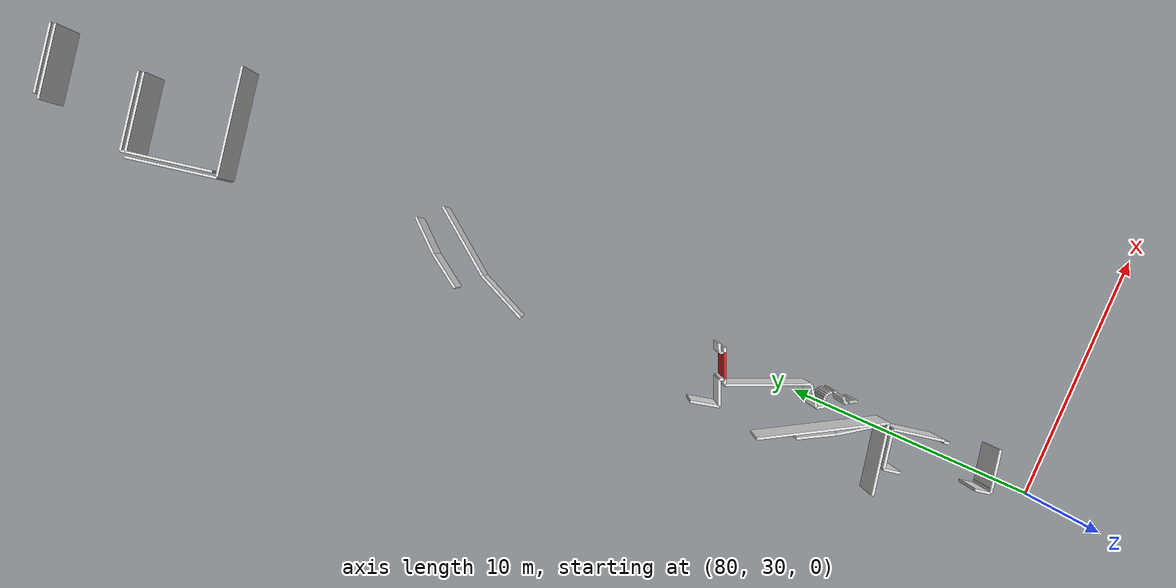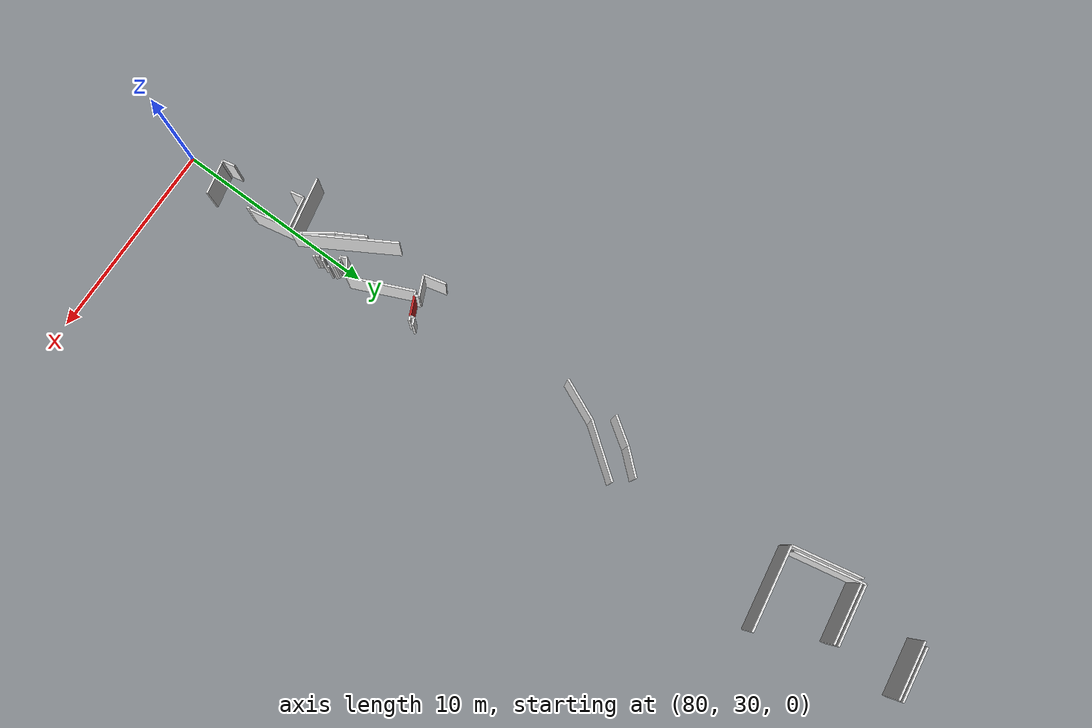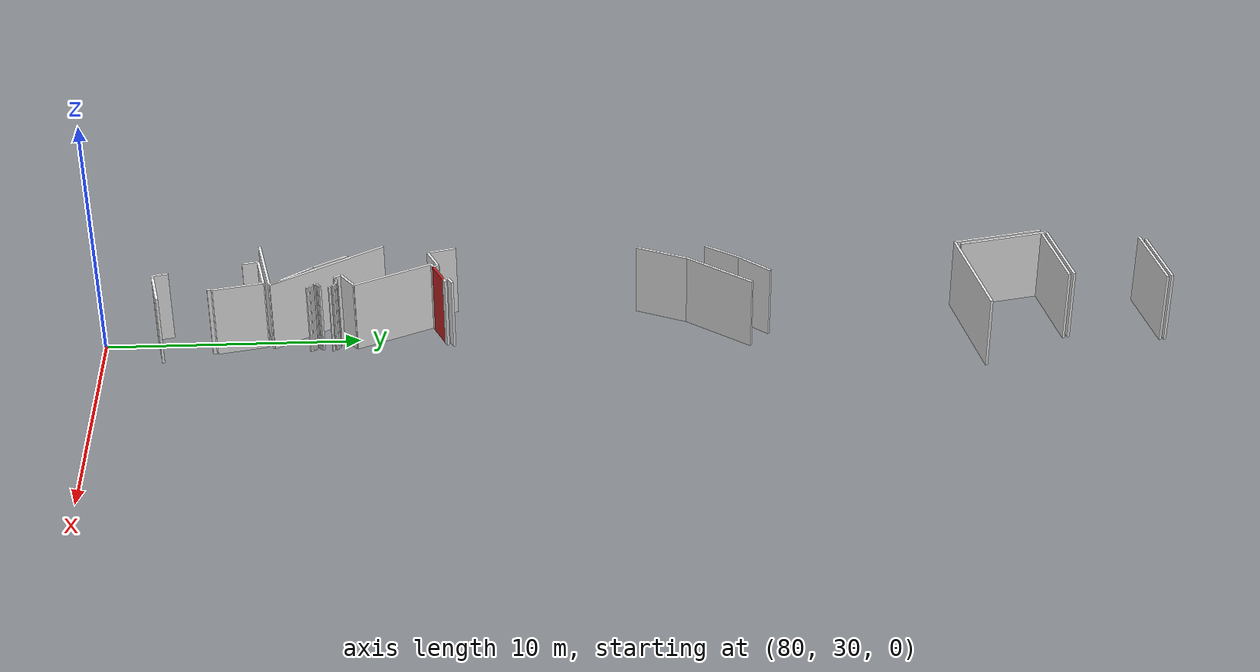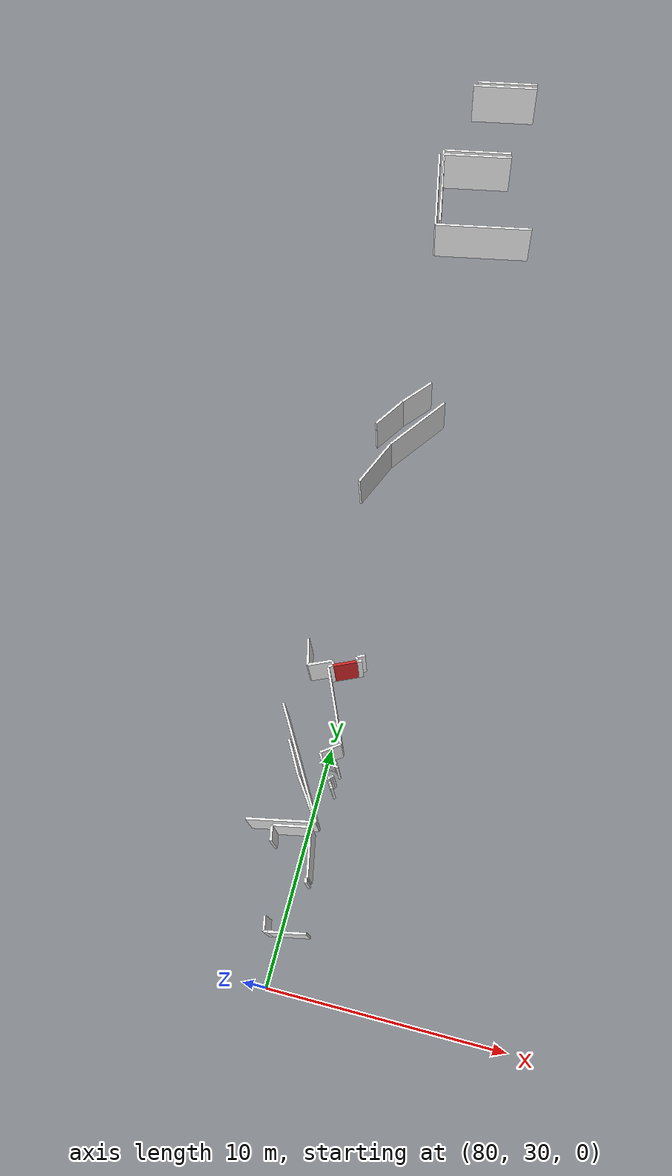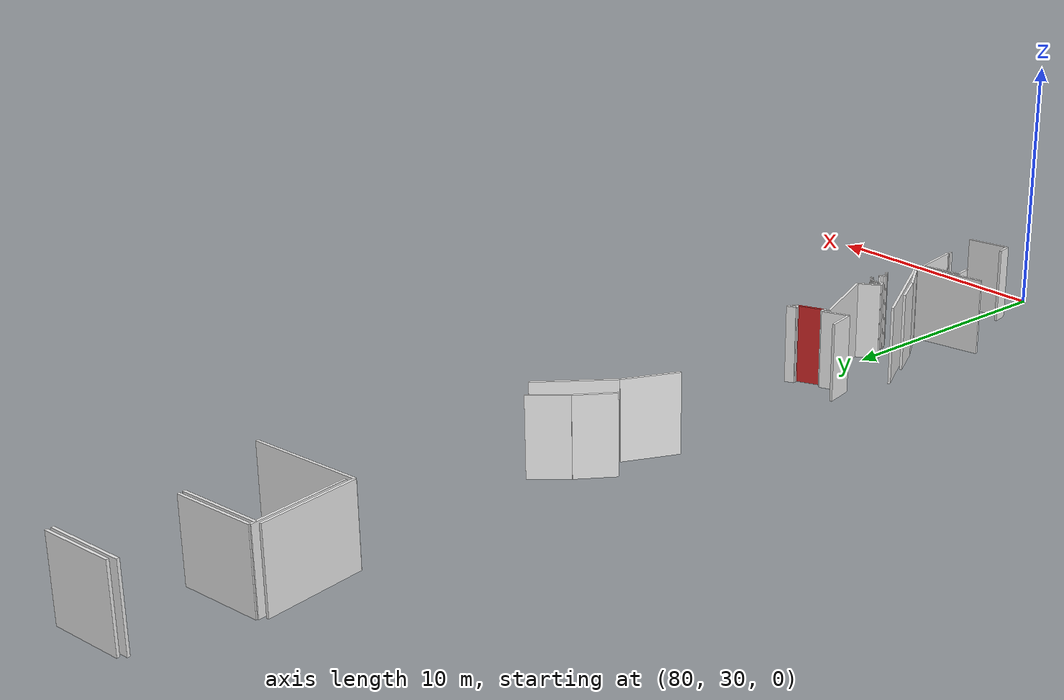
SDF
<sdf version="1.6">
 <world name="default">
  <model name="wall_79.8_43.2">
   <static>true</static>
   <pose>79.82500000001164 43.18500000005588 1.5 0 0 0.42331075582642225</pose>
   <link name="link">
    <visual name="visual">
     <geometry><box><size>0.9980981916532635 0.1 3</size></box></geometry>
     <material>
      <script><uri>file://media/materials/scripts/gazebo.material</uri><name>Gazebo/Red</name></script>
     </material>
    </visual>
   </link>
  </model>
  <model name="wall_79.9_71.5">
   <static>true</static>
   <pose>79.93000000002212 71.50500000012107 1.5 0 0 0.19383178298877288</pose>
   <link name="link">
    <visual name="visual">
     <geometry><box><size>2.7515268488324223 0.1 3</size></box></geometry>
     <material>
      <script><uri>file://media/materials/scripts/gazebo.material</uri><name>Gazebo/White</name></script>
     </material>
    </visual>
   </link>
  </model>
  <model name="wall_79.5_67.5">
   <static>true</static>
   <pose>79.48500000001513 67.47999999998137 1.5 0 0 -2.9473516575252563</pose>
   <link name="link">
    <visual name="visual">
     <geometry><box><size>3.1084562083905816 0.1 3</size></box></geometry>
     <material>
      <script><uri>file://media/materials/scripts/gazebo.material</uri><name>Gazebo/White</name></script>
     </material>
    </visual>
   </link>
  </model>
  <model name="wall_78.3_65.5">
   <static>true</static>
   <pose>78.29000000000815 65.52000000001863 1.5 0 0 -1.3745595150025516</pose>
   <link name="link">
    <visual name="visual">
     <geometry><box><size>3.384966765264479 0.1 3</size></box></geometry>
     <material>
      <script><uri>file://media/materials/scripts/gazebo.material</uri><name>Gazebo/White</name></script>
     </material>
    </visual>
   </link>
  </model>
  <model name="wall_79.3_42.9">
   <static>true</static>
   <pose>79.26999999998952 42.93500000005588 1.5 0 0 0.4228539254915673</pose>
   <link name="link">
    <visual name="visual">
     <geometry><box><size>0.21931712194408015 0.1 3</size></box></geometry>
     <material>
      <script><uri>file://media/materials/scripts/gazebo.material</uri><name>Gazebo/White</name></script>
     </material>
    </visual>
   </link>
  </model>
  <model name="wall_80.4_43.4">
   <static>true</static>
   <pose>80.37000000002445 43.43000000016764 1.5 0 0 0.4182243299392765</pose>
   <link name="link">
    <visual name="visual">
     <geometry><box><size>0.19697715605979885 0.1 3</size></box></geometry>
     <material>
      <script><uri>file://media/materials/scripts/gazebo.material</uri><name>Gazebo/White</name></script>
     </material>
    </visual>
   </link>
  </model>
  <model name="wall_80.6_38.1">
   <static>true</static>
   <pose>80.625 38.11499999999069 1.5 0 0 2.191045814350898</pose>
   <link name="link">
    <visual name="visual">
     <geometry><box><size>0.08602325256107957 0.1 3</size></box></geometry>
     <material>
      <script><uri>file://media/materials/scripts/gazebo.material</uri><name>Gazebo/White</name></script>
     </material>
    </visual>
   </link>
  </model>
  <model name="wall_80.6_38.2">
   <static>true</static>
   <pose>80.58499999999185 38.175000000046566 1.5 0 0 2.1112158241550976</pose>
   <link name="link">
    <visual name="visual">
     <geometry><box><size>0.058309519172461015 0.1 3</size></box></geometry>
     <material>
      <script><uri>file://media/materials/scripts/gazebo.material</uri><name>Gazebo/White</name></script>
     </material>
    </visual>
   </link>
  </model>
  <model name="wall_80.5_38.2">
   <static>true</static>
   <pose>80.5450000000128 38.22999999998137 1.5 0 0 2.265534606235961</pose>
   <link name="link">
    <visual name="visual">
     <geometry><box><size>0.07810249643681061 0.1 3</size></box></geometry>
     <material>
      <script><uri>file://media/materials/scripts/gazebo.material</uri><name>Gazebo/White</name></script>
     </material>
    </visual>
   </link>
  </model>
  <model name="wall_80.5_38.3">
   <static>true</static>
   <pose>80.5 38.28999999980442 1.5 0 0 2.158798930342464</pose>
   <link name="link">
    <visual name="visual">
     <geometry><box><size>0.0721110255764384 0.1 3</size></box></geometry>
     <material>
      <script><uri>file://media/materials/scripts/gazebo.material</uri><name>Gazebo/White</name></script>
     </material>
    </visual>
   </link>
  </model>
  <model name="wall_80.4_38.4">
   <static>true</static>
   <pose>80.41000000000349 38.419999999925494 1.5 0 0 2.2142974351225195</pose>
   <link name="link">
    <visual name="visual">
     <geometry><box><size>0.10000000005820765 0.1 3</size></box></geometry>
     <material>
      <script><uri>file://media/materials/scripts/gazebo.material</uri><name>Gazebo/White</name></script>
     </material>
    </visual>
   </link>
  </model>
  <model name="wall_80.4_38.5">
   <static>true</static>
   <pose>80.4200000000128 38.47999999998137 1.5 0 0 0.4636476092918444</pose>
   <link name="link">
    <visual name="visual">
     <geometry><box><size>0.0894427191312291 0.1 3</size></box></geometry>
     <material>
      <script><uri>file://media/materials/scripts/gazebo.material</uri><name>Gazebo/White</name></script>
     </material>
    </visual>
   </link>
  </model>
  <model name="wall_80.5_38.5">
   <static>true</static>
   <pose>80.49000000001979 38.52499999990687 1.5 0 0 0.6947382743836776</pose>
   <link name="link">
    <visual name="visual">
     <geometry><box><size>0.07810249663803426 0.1 3</size></box></geometry>
     <material>
      <script><uri>file://media/materials/scripts/gazebo.material</uri><name>Gazebo/White</name></script>
     </material>
    </visual>
   </link>
  </model>
  <model name="wall_80.6_38.6">
   <static>true</static>
   <pose>80.55000000001746 38.579999999841675 1.5 0 0 0.7853981638825122</pose>
   <link name="link">
    <visual name="visual">
     <geometry><box><size>0.084852813780252 0.1 3</size></box></geometry>
     <material>
      <script><uri>file://media/materials/scripts/gazebo.material</uri><name>Gazebo/White</name></script>
     </material>
    </visual>
   </link>
  </model>
  <model name="wall_80.6_39.0">
   <static>true</static>
   <pose>80.625 38.96999999997206 1.5 0 0 1.9295669989791453</pose>
   <link name="link">
    <visual name="visual">
     <geometry><box><size>0.0854400370967353 0.1 3</size></box></geometry>
     <material>
      <script><uri>file://media/materials/scripts/gazebo.material</uri><name>Gazebo/White</name></script>
     </material>
    </visual>
   </link>
  </model>
  <model name="wall_80.5_39.1">
   <static>true</static>
   <pose>80.53500000000349 39.110000000102445 1.5 0 0 2.2655346024190655</pose>
   <link name="link">
    <visual name="visual">
     <geometry><box><size>0.07810249679454152 0.1 3</size></box></geometry>
     <material>
      <script><uri>file://media/materials/scripts/gazebo.material</uri><name>Gazebo/White</name></script>
     </material>
    </visual>
   </link>
  </model>
  <model name="wall_80.5_39.2">
   <static>true</static>
   <pose>80.47500000000582 39.16500000003725 1.5 0 0 2.521343169416129</pose>
   <link name="link">
    <visual name="visual">
     <geometry><box><size>0.08602325256784608 0.1 3</size></box></geometry>
     <material>
      <script><uri>file://media/materials/scripts/gazebo.material</uri><name>Gazebo/White</name></script>
     </material>
    </visual>
   </link>
  </model>
  <model name="wall_80.4_39.2">
   <static>true</static>
   <pose>80.39999999999418 39.205000000074506 1.5 0 0 2.7828219805284427</pose>
   <link name="link">
    <visual name="visual">
     <geometry><box><size>0.08544003755999831 0.1 3</size></box></geometry>
     <material>
      <script><uri>file://media/materials/scripts/gazebo.material</uri><name>Gazebo/White</name></script>
     </material>
    </visual>
   </link>
  </model>
  <model name="wall_80.3_39.2">
   <static>true</static>
   <pose>80.32000000000698 39.22500000009313 1.5 0 0 3.0172376617295393</pose>
   <link name="link">
    <visual name="visual">
     <geometry><box><size>0.08062257741367569 0.1 3</size></box></geometry>
     <material>
      <script><uri>file://media/materials/scripts/gazebo.material</uri><name>Gazebo/White</name></script>
     </material>
    </visual>
   </link>
  </model>
  <model name="wall_80.2_39.2">
   <static>true</static>
   <pose>80.23500000001513 39.22999999998137 1.5 0 0 3.141592653589793</pose>
   <link name="link">
    <visual name="visual">
     <geometry><box><size>0.09000000002561137 0.1 3</size></box></geometry>
     <material>
      <script><uri>file://media/materials/scripts/gazebo.material</uri><name>Gazebo/White</name></script>
     </material>
    </visual>
   </link>
  </model>
  <model name="wall_80.1_39.2">
   <static>true</static>
   <pose>80.14999999999418 39.21999999997206 1.5 0 0 -2.8966139902917303</pose>
   <link name="link">
    <visual name="visual">
     <geometry><box><size>0.08246211253268232 0.1 3</size></box></geometry>
     <material>
      <script><uri>file://media/materials/scripts/gazebo.material</uri><name>Gazebo/White</name></script>
     </material>
    </visual>
   </link>
  </model>
  <model name="wall_80.0_39.1">
   <static>true</static>
   <pose>80.00499999997555 39.14500000001863 1.5 0 0 -2.521343169416129</pose>
   <link name="link">
    <visual name="visual">
     <geometry><box><size>0.08602325256784608 0.1 3</size></box></geometry>
     <material>
      <script><uri>file://media/materials/scripts/gazebo.material</uri><name>Gazebo/White</name></script>
     </material>
    </visual>
   </link>
  </model>
  <model name="wall_79.9_39.2">
   <static>true</static>
   <pose>79.875 39.24499999987893 1.5 0 0 2.1327178891317615</pose>
   <link name="link">
    <visual name="visual">
     <geometry><box><size>0.3190611227089686 0.1 3</size></box></geometry>
     <material>
      <script><uri>file://media/materials/scripts/gazebo.material</uri><name>Gazebo/White</name></script>
     </material>
    </visual>
   </link>
  </model>
  <model name="wall_80.2_39.6">
   <static>true</static>
   <pose>80.15499999999884 39.64500000001863 1.5 0 0 0.6279812908789976</pose>
   <link name="link">
    <visual name="visual">
     <geometry><box><size>0.9021086410927485 0.1 3</size></box></geometry>
     <material>
      <script><uri>file://media/materials/scripts/gazebo.material</uri><name>Gazebo/White</name></script>
     </material>
    </visual>
   </link>
  </model>
  <model name="wall_79.8_41.4">
   <static>true</static>
   <pose>79.84500000000116 41.4000000001397 1.5 0 0 1.9961589584783586</pose>
   <link name="link">
    <visual name="visual">
     <geometry><box><size>3.2715286946599265 0.1 3</size></box></geometry>
     <material>
      <script><uri>file://media/materials/scripts/gazebo.material</uri><name>Gazebo/White</name></script>
     </material>
    </visual>
   </link>
  </model>
  <model name="wall_78.8_52.0">
   <static>true</static>
   <pose>78.75 51.96500000008382 1.5 0 0 1.1591850326473987</pose>
   <link name="link">
    <visual name="visual">
     <geometry><box><size>2.1495348335821967 0.1 3</size></box></geometry>
     <material>
      <script><uri>file://media/materials/scripts/gazebo.material</uri><name>Gazebo/White</name></script>
     </material>
    </visual>
   </link>
  </model>
  <model name="wall_80.1_54.2">
   <static>true</static>
   <pose>80.07499999998254 54.16500000003725 1.5 0 0 0.9359099816356786</pose>
   <link name="link">
    <visual name="visual">
     <geometry><box><size>3.018111992368174 0.1 3</size></box></geometry>
     <material>
      <script><uri>file://media/materials/scripts/gazebo.material</uri><name>Gazebo/White</name></script>
     </material>
    </visual>
   </link>
  </model>
  <model name="wall_80.4_43.6">
   <static>true</static>
   <pose>80.36500000001979 43.640000000130385 1.5 0 0 -2.6901395616910224</pose>
   <link name="link">
    <visual name="visual">
     <geometry><box><size>0.3667424164975201 0.1 3</size></box></geometry>
     <material>
      <script><uri>file://media/materials/scripts/gazebo.material</uri><name>Gazebo/White</name></script>
     </material>
    </visual>
   </link>
  </model>
  <model name="wall_80.2_43.5">
   <static>true</static>
   <pose>80.24000000001979 43.47500000009313 1.5 0 0 -1.1309537437318191</pose>
   <link name="link">
    <visual name="visual">
     <geometry><box><size>0.1878829422200848 0.1 3</size></box></geometry>
     <material>
      <script><uri>file://media/materials/scripts/gazebo.material</uri><name>Gazebo/White</name></script>
     </material>
    </visual>
   </link>
  </model>
  <model name="wall_79.3_43.1">
   <static>true</static>
   <pose>79.32500000001164 43.07000000006519 1.5 0 0 2.0344439352783015</pose>
   <link name="link">
    <visual name="visual">
     <geometry><box><size>0.20124611811034362 0.1 3</size></box></geometry>
     <material>
      <script><uri>file://media/materials/scripts/gazebo.material</uri><name>Gazebo/White</name></script>
     </material>
    </visual>
   </link>
  </model>
  <model name="wall_78.8_43.0">
   <static>true</static>
   <pose>78.81000000002678 42.950000000186265 1.5 0 0 -2.7213959400475116</pose>
   <link name="link">
    <visual name="visual">
     <geometry><box><size>1.029563014070432 0.1 3</size></box></geometry>
     <material>
      <script><uri>file://media/materials/scripts/gazebo.material</uri><name>Gazebo/White</name></script>
     </material>
    </visual>
   </link>
  </model>
  <model name="wall_78.2_43.3">
   <static>true</static>
   <pose>78.2050000000163 43.28500000014901 1.5 0 0 1.8136151661143607</pose>
   <link name="link">
    <visual name="visual">
     <geometry><box><size>1.1229425629502219 0.1 3</size></box></geometry>
     <material>
      <script><uri>file://media/materials/scripts/gazebo.material</uri><name>Gazebo/White</name></script>
     </material>
    </visual>
   </link>
  </model>
  <model name="wall_79.4_67.7">
   <static>true</static>
   <pose>79.44000000000233 67.67999999993481 1.5 0 0 -2.946728733873762</pose>
   <link name="link">
    <visual name="visual">
     <geometry><box><size>3.0986448651528713 0.1 3</size></box></geometry>
     <material>
      <script><uri>file://media/materials/scripts/gazebo.material</uri><name>Gazebo/White</name></script>
     </material>
    </visual>
   </link>
  </model>
  <model name="wall_79.9_71.3">
   <static>true</static>
   <pose>79.875 71.2949999999255 1.5 0 0 0.1947324503984289</pose>
   <link name="link">
    <visual name="visual">
     <geometry><box><size>2.9456747954281193 0.1 3</size></box></geometry>
     <material>
      <script><uri>file://media/materials/scripts/gazebo.material</uri><name>Gazebo/White</name></script>
     </material>
    </visual>
   </link>
  </model>
  <model name="wall_79.6_32.1">
   <static>true</static>
   <pose>79.61500000001979 32.05499999993481 1.5 0 0 -2.966920455733987</pose>
   <link name="link">
    <visual name="visual">
     <geometry><box><size>0.1726267649646635 0.1 3</size></box></geometry>
     <material>
      <script><uri>file://media/materials/scripts/gazebo.material</uri><name>Gazebo/White</name></script>
     </material>
    </visual>
   </link>
  </model>
  <model name="wall_79.5_32.3">
   <static>true</static>
   <pose>79.47000000000116 32.34000000008382 1.5 0 0 1.7681918867007462</pose>
   <link name="link">
    <visual name="visual">
     <geometry><box><size>0.6118823417329601 0.1 3</size></box></geometry>
     <material>
      <script><uri>file://media/materials/scripts/gazebo.material</uri><name>Gazebo/White</name></script>
     </material>
    </visual>
   </link>
  </model>
  <model name="wall_78.8_35.8">
   <static>true</static>
   <pose>78.77500000002328 35.78500000014901 1.5 0 0 1.7742893720946593</pose>
   <link name="link">
    <visual name="visual">
     <geometry><box><size>0.6432728813345039 0.1 3</size></box></geometry>
     <material>
      <script><uri>file://media/materials/scripts/gazebo.material</uri><name>Gazebo/White</name></script>
     </material>
    </visual>
   </link>
  </model>
  <model name="wall_79.5_36.2">
   <static>true</static>
   <pose>79.47000000000116 36.25 1.5 0 0 0.194863919575871</pose>
   <link name="link">
    <visual name="visual">
     <geometry><box><size>1.549322432474246 0.1 3</size></box></geometry>
     <material>
      <script><uri>file://media/materials/scripts/gazebo.material</uri><name>Gazebo/White</name></script>
     </material>
    </visual>
   </link>
  </model>
  <model name="wall_80.4_35.4">
   <static>true</static>
   <pose>80.42999999999302 35.425000000046566 1.5 0 0 -1.368474698376931</pose>
   <link name="link">
    <visual name="visual">
     <geometry><box><size>1.9906029234704192 0.1 3</size></box></geometry>
     <material>
      <script><uri>file://media/materials/scripts/gazebo.material</uri><name>Gazebo/White</name></script>
     </material>
    </visual>
   </link>
  </model>
  <model name="wall_80.6_34.4">
   <static>true</static>
   <pose>80.60000000000582 34.44500000006519 1.5 0 0 -2.9764439722422162</pose>
   <link name="link">
    <visual name="visual">
     <geometry><box><size>0.060827625340493775 0.1 3</size></box></geometry>
     <material>
      <script><uri>file://media/materials/scripts/gazebo.material</uri><name>Gazebo/White</name></script>
     </material>
    </visual>
   </link>
  </model>
  <model name="wall_80.6_34.3">
   <static>true</static>
   <pose>80.59500000000116 34.34499999997206 1.5 0 0 -1.3134726118087283</pose>
   <link name="link">
    <visual name="visual">
     <geometry><box><size>0.1964688269868828 0.1 3</size></box></geometry>
     <material>
      <script><uri>file://media/materials/scripts/gazebo.material</uri><name>Gazebo/White</name></script>
     </material>
    </visual>
   </link>
  </model>
  <model name="wall_80.4_32.2">
   <static>true</static>
   <pose>80.44500000000698 32.21999999997206 1.5 0 0 -2.942906771693948</pose>
   <link name="link">
    <visual name="visual">
     <geometry><box><size>1.5199013126318053 0.1 3</size></box></geometry>
     <material>
      <script><uri>file://media/materials/scripts/gazebo.material</uri><name>Gazebo/White</name></script>
     </material>
    </visual>
   </link>
  </model>
  <model name="wall_78.1_65.4">
   <static>true</static>
   <pose>78.11999999999534 65.38500000000931 1.5 0 0 -1.3739487121216474</pose>
   <link name="link">
    <visual name="visual">
     <geometry><box><size>3.5791200038046584 0.1 3</size></box></geometry>
     <material>
      <script><uri>file://media/materials/scripts/gazebo.material</uri><name>Gazebo/White</name></script>
     </material>
    </visual>
   </link>
  </model>
  <model name="wall_80.6_64.1">
   <static>true</static>
   <pose>80.59999999997672 64.05000000004657 1.5 0 0 0.19468553945508393</pose>
   <link name="link">
    <visual name="visual">
     <geometry><box><size>4.342027176401746 0.1 3</size></box></geometry>
     <material>
      <script><uri>file://media/materials/scripts/gazebo.material</uri><name>Gazebo/White</name></script>
     </material>
    </visual>
   </link>
  </model>
  <model name="wall_79.7_55.6">
   <static>true</static>
   <pose>79.69000000000233 55.57000000006519 1.5 0 0 -2.282255452669402</pose>
   <link name="link">
    <visual name="visual">
     <geometry><box><size>1.5315351772862982 0.1 3</size></box></geometry>
     <material>
      <script><uri>file://media/materials/scripts/gazebo.material</uri><name>Gazebo/White</name></script>
     </material>
    </visual>
   </link>
  </model>
  <model name="wall_78.8_54.4">
   <static>true</static>
   <pose>78.76500000001397 54.35000000009313 1.5 0 0 -2.1569938780447484</pose>
   <link name="link">
    <visual name="visual">
     <geometry><box><size>1.5365220469059306 0.1 3</size></box></geometry>
     <material>
      <script><uri>file://media/materials/scripts/gazebo.material</uri><name>Gazebo/White</name></script>
     </material>
    </visual>
   </link>
  </model>
  <model name="wall_78.8_38.9">
   <static>true</static>
   <pose>78.80999999999767 38.92999999993481 1.5 0 0 -1.048392895018153</pose>
   <link name="link">
    <visual name="visual">
     <geometry><box><size>1.5231546210321498 0.1 3</size></box></geometry>
     <material>
      <script><uri>file://media/materials/scripts/gazebo.material</uri><name>Gazebo/White</name></script>
     </material>
    </visual>
   </link>
  </model>
  <model name="wall_79.6_37.7">
   <static>true</static>
   <pose>79.63000000000466 37.65500000002794 1.5 0 0 -0.9497782014457066</pose>
   <link name="link">
    <visual name="visual">
     <geometry><box><size>1.5123822268072231 0.1 3</size></box></geometry>
     <material>
      <script><uri>file://media/materials/scripts/gazebo.material</uri><name>Gazebo/White</name></script>
     </material>
    </visual>
   </link>
  </model>
  <model name="wall_80.2_36.8">
   <static>true</static>
   <pose>80.22500000000582 36.84000000008382 1.5 0 0 -0.911486258352942</pose>
   <link name="link">
    <visual name="visual">
     <geometry><box><size>0.5060632370801604 0.1 3</size></box></geometry>
     <material>
      <script><uri>file://media/materials/scripts/gazebo.material</uri><name>Gazebo/White</name></script>
     </material>
    </visual>
   </link>
  </model>
  <model name="wall_79.0_36.4">
   <static>true</static>
   <pose>79.0 36.360000000102445 1.5 0 0 -2.9414115856051164</pose>
   <link name="link">
    <visual name="visual">
     <geometry><box><size>2.816238626273348 0.1 3</size></box></geometry>
     <material>
      <script><uri>file://media/materials/scripts/gazebo.material</uri><name>Gazebo/White</name></script>
     </material>
    </visual>
   </link>
  </model>
  <model name="wall_79.1_38.8">
   <static>true</static>
   <pose>79.08999999999651 38.800000000046566 1.5 0 0 2.10917084016099</pose>
   <link name="link">
    <visual name="visual">
     <geometry><box><size>5.031779009320233 0.1 3</size></box></geometry>
     <material>
      <script><uri>file://media/materials/scripts/gazebo.material</uri><name>Gazebo/White</name></script>
     </material>
    </visual>
   </link>
  </model>
  <model name="wall_78.3_65.6">
   <static>true</static>
   <pose>78.26999999998952 65.61999999987893 1.5 0 0 1.7670989909072092</pose>
   <link name="link">
    <visual name="visual">
     <geometry><box><size>3.5889274163944065 0.1 3</size></box></geometry>
     <material>
      <script><uri>file://media/materials/scripts/gazebo.material</uri><name>Gazebo/White</name></script>
     </material>
    </visual>
   </link>
  </model>
 </world>
</sdf>
